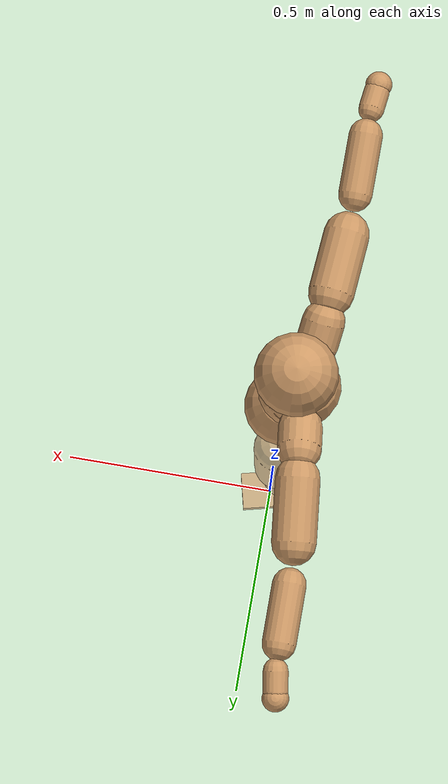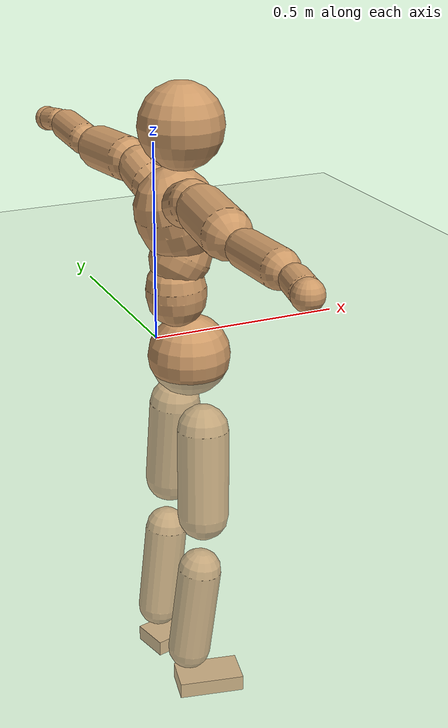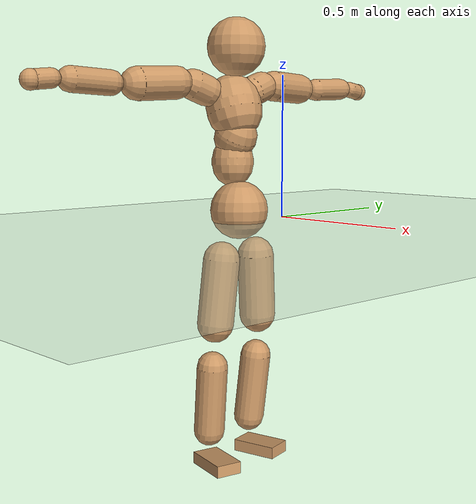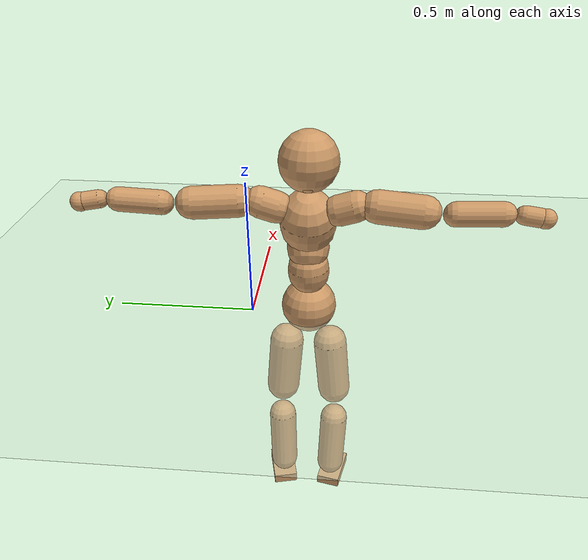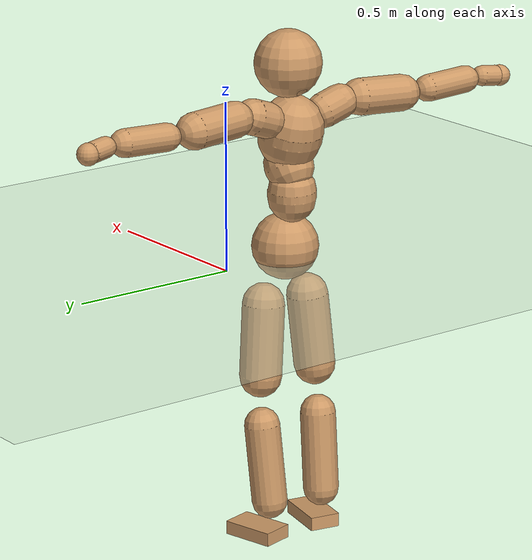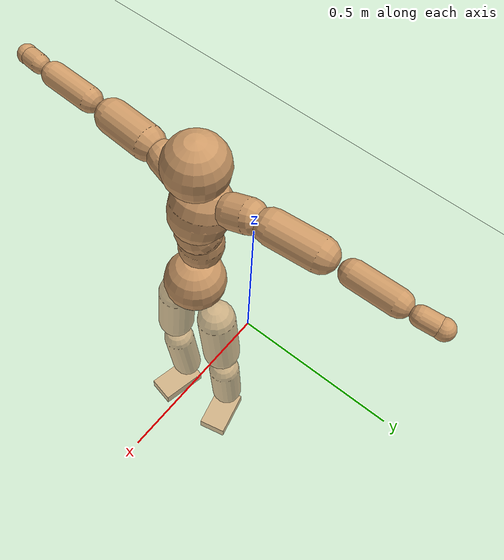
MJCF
<mujoco model="humanoid">
  <compiler coordinate="local"/>
  <default>
    <joint damping="0.0" armature="0.01" stiffness="0.0" limited="true"/>
    <geom conaffinity="1" condim="3" contype="7" margin="0.001" rgba="0.8 0.6 .4 1"/>
  </default>
  <asset>
    <texture type="skybox" builtin="gradient" rgb1=".4 .5 .6" rgb2="0 0 0" width="100" height="100"/>
    <texture builtin="flat" height="1278" mark="cross" markrgb="1 1 1" name="texgeom" random="0.01" rgb1="0.8 0.6 0.4" rgb2="0.8 0.6 0.4" type="cube" width="127"/>
    <texture builtin="checker" height="100" name="texplane" rgb1="0 0 0" rgb2="0.8 0.8 0.8" type="2d" width="100"/>
    <material name="MatPlane" reflectance="0.5" shininess="1" specular="1" texrepeat="60 60" texture="texplane"/>
    <material name="geom" texture="texgeom" texuniform="true"/>
  </asset>
  <worldbody>
    <light cutoff="100" diffuse="1 1 1" dir="-0 0 -1.3" directional="true" exponent="1" pos="0 0 1.3" specular=".1 .1 .1"/>
    <geom conaffinity="1" condim="3" name="floor" pos="0 0 0" rgba="0.8 0.9 0.8 1" size="100 100 .2" type="plane" material="MatPlane"/>
    <body name="Pelvis" pos="-0.0007 -0.2106 0.0389">
      <freejoint name="Pelvis"/>
      <geom type="sphere" contype="1" conaffinity="1" density="500" size="0.0993" pos="0.0000 0.0000 0.0000" name="Pelvis"/>
      <body name="L_Hip" pos="-0.0007 0.0768 -0.0901">
        <joint name="L_Hip_x" type="hinge" pos="0 0 0" axis="1 0 0" stiffness="800" damping="80" armature="0.02" range="-180.0000 180.0000"/>
        <joint name="L_Hip_y" type="hinge" pos="0 0 0" axis="0 1 0" stiffness="800" damping="80" armature="0.02" range="-180.0000 180.0000"/>
        <joint name="L_Hip_z" type="hinge" pos="0 0 0" axis="0 0 1" stiffness="800" damping="80" armature="0.02" range="-180.0000 180.0000"/>
        <geom type="capsule" contype="1" conaffinity="1" density="500" fromto="-0.0025 0.0057 -0.0725 -0.0098 0.0228 -0.2898" size="0.063" name="L_Hip"/>
        <body name="L_Knee" pos="-0.0123 0.0285 -0.3623">
          <joint name="L_Knee_x" type="hinge" pos="0 0 0" axis="1 0 0" stiffness="800" damping="80" armature="0.02" range="-180.0000 180.0000"/>
          <joint name="L_Knee_y" type="hinge" pos="0 0 0" axis="0 1 0" stiffness="800" damping="80" armature="0.02" range="-180.0000 180.0000"/>
          <joint name="L_Knee_z" type="hinge" pos="0 0 0" axis="0 0 1" stiffness="800" damping="80" armature="0.02" range="-180.0000 180.0000"/>
          <geom type="capsule" contype="1" conaffinity="1" density="500" fromto="-0.0090 -0.0022 -0.0773 -0.0361 -0.0087 -0.3092" size="0.0533" name="L_Knee"/>
          <body name="L_Ankle" pos="-0.0452 -0.0109 -0.3865">
            <joint name="L_Ankle_x" type="hinge" pos="0 0 0" axis="1 0 0" stiffness="800" damping="80" armature="0.02" range="-180.0000 180.0000"/>
            <joint name="L_Ankle_y" type="hinge" pos="0 0 0" axis="0 1 0" stiffness="800" damping="80" armature="0.02" range="-180.0000 180.0000"/>
            <joint name="L_Ankle_z" type="hinge" pos="0 0 0" axis="0 0 1" stiffness="800" damping="80" armature="0.02" range="-180.0000 180.0000"/>
            <geom type="box" contype="1" conaffinity="1" density="500" pos="0.0564 0.0135 -0.0280" size="0.0801 0.0475 0.0202" quat="0.9931 0.0000 0.0000 0.1172" name="L_Ankle"/>
            <body name="L_Toe" pos="0.1128 0.027 -0.056">
              <joint name="L_Toe_x" type="hinge" pos="0 0 0" axis="1 0 0" stiffness="500" damping="50" armature="0.02" range="-180.0000 180.0000"/>
              <joint name="L_Toe_y" type="hinge" pos="0 0 0" axis="0 1 0" stiffness="500" damping="50" armature="0.02" range="-180.0000 180.0000"/>
              <joint name="L_Toe_z" type="hinge" pos="0 0 0" axis="0 0 1" stiffness="500" damping="50" armature="0.02" range="-180.0000 180.0000"/>
              <geom type="box" contype="1" conaffinity="1" density="500" pos="0.0000 0.0000 0.0278" size="0.001 0.0024 0.001" quat="0.9924 0.0000 0.0000 0.1234" name="L_Toe"/>
            </body>
          </body>
        </body>
      </body>
      <body name="R_Hip" pos="0.0026 -0.0748 -0.0905">
        <joint name="R_Hip_x" type="hinge" pos="0 0 0" axis="1 0 0" stiffness="800" damping="80" armature="0.02" range="-180.0000 180.0000"/>
        <joint name="R_Hip_y" type="hinge" pos="0 0 0" axis="0 1 0" stiffness="800" damping="80" armature="0.02" range="-180.0000 180.0000"/>
        <joint name="R_Hip_z" type="hinge" pos="0 0 0" axis="0 0 1" stiffness="800" damping="80" armature="0.02" range="-180.0000 180.0000"/>
        <geom type="capsule" contype="1" conaffinity="1" density="500" fromto="-0.0027 -0.0071 -0.0737 -0.0108 -0.0285 -0.2949" size="0.0622" name="R_Hip"/>
        <body name="R_Knee" pos="-0.0135 -0.0356 -0.3687">
          <joint name="R_Knee_x" type="hinge" pos="0 0 0" axis="1 0 0" stiffness="800" damping="80" armature="0.02" range="-180.0000 180.0000"/>
          <joint name="R_Knee_y" type="hinge" pos="0 0 0" axis="0 1 0" stiffness="800" damping="80" armature="0.02" range="-180.0000 180.0000"/>
          <joint name="R_Knee_z" type="hinge" pos="0 0 0" axis="0 0 1" stiffness="800" damping="80" armature="0.02" range="-180.0000 180.0000"/>
          <geom type="capsule" contype="1" conaffinity="1" density="500" fromto="-0.0086 0.0026 -0.0777 -0.0346 0.0105 -0.3107" size="0.0535" name="R_Knee"/>
          <body name="R_Ankle" pos="-0.0432 0.0132 -0.3884">
            <joint name="R_Ankle_x" type="hinge" pos="0 0 0" axis="1 0 0" stiffness="800" damping="80" armature="0.02" range="-180.0000 180.0000"/>
            <joint name="R_Ankle_y" type="hinge" pos="0 0 0" axis="0 1 0" stiffness="800" damping="80" armature="0.02" range="-180.0000 180.0000"/>
            <joint name="R_Ankle_z" type="hinge" pos="0 0 0" axis="0 0 1" stiffness="800" damping="80" armature="0.02" range="-180.0000 180.0000"/>
            <geom type="box" contype="1" conaffinity="1" density="500" pos="0.0584 -0.0120 -0.0242" size="0.0819 0.0461 0.0204" quat="0.9949 0.0000 0.0000 -0.1010" name="R_Ankle"/>
            <body name="R_Toe" pos="0.1168 -0.024 -0.0483">
              <joint name="R_Toe_x" type="hinge" pos="0 0 0" axis="1 0 0" stiffness="500" damping="50" armature="0.02" range="-180.0000 180.0000"/>
              <joint name="R_Toe_y" type="hinge" pos="0 0 0" axis="0 1 0" stiffness="500" damping="50" armature="0.02" range="-180.0000 180.0000"/>
              <joint name="R_Toe_z" type="hinge" pos="0 0 0" axis="0 0 1" stiffness="500" damping="50" armature="0.02" range="-180.0000 180.0000"/>
              <geom type="box" contype="1" conaffinity="1" density="500" pos="0.0000 0.0000 0.0256" size="0.0009 0.0023 0.0011" quat="0.9958 0.0000 0.0000 -0.0912" name="R_Toe"/>
            </body>
          </body>
        </body>
      </body>
      <body name="Torso" pos="-0.0302 -0.002 0.1046">
        <joint name="Torso_x" type="hinge" pos="0 0 0" axis="1 0 0" stiffness="1000" damping="100" armature="0.02" range="-180.0000 180.0000"/>
        <joint name="Torso_y" type="hinge" pos="0 0 0" axis="0 1 0" stiffness="1000" damping="100" armature="0.02" range="-180.0000 180.0000"/>
        <joint name="Torso_z" type="hinge" pos="0 0 0" axis="0 0 1" stiffness="1000" damping="100" armature="0.02" range="-180.0000 180.0000"/>
        <geom type="capsule" contype="1" conaffinity="1" density="500" fromto="-0.0025 0.0019 0.0711 -0.0016 0.0012 0.0474" size="0.071424" name="Torso"/>
        <body name="Spine" pos="-0.0041 0.0031 0.1185">
          <joint name="Spine_x" type="hinge" pos="0 0 0" axis="1 0 0" stiffness="1000" damping="100" armature="0.02" range="-180.0000 180.0000"/>
          <joint name="Spine_y" type="hinge" pos="0 0 0" axis="0 1 0" stiffness="1000" damping="100" armature="0.02" range="-180.0000 180.0000"/>
          <joint name="Spine_z" type="hinge" pos="0 0 0" axis="0 0 1" stiffness="1000" damping="100" armature="0.02" range="-180.0000 180.0000"/>
          <geom type="capsule" contype="1" conaffinity="1" density="500" fromto="0.0172 0.0010 0.0291 0.0115 0.0007 0.0194" size="0.072447" name="Spine"/>
          <body name="Chest" pos="0.0287 0.0017 0.0485">
            <joint name="Chest_x" type="hinge" pos="0 0 0" axis="1 0 0" stiffness="1000" damping="100" armature="0.02" range="-180.0000 180.0000"/>
            <joint name="Chest_y" type="hinge" pos="0 0 0" axis="0 1 0" stiffness="1000" damping="100" armature="0.02" range="-180.0000 180.0000"/>
            <joint name="Chest_z" type="hinge" pos="0 0 0" axis="0 0 1" stiffness="1000" damping="100" armature="0.02" range="-180.0000 180.0000"/>
            <geom type="capsule" contype="1" conaffinity="1" density="500" fromto="-0.0283 -0.0009 0.0924 -0.0189 -0.0006 0.0616" size="0.09486" name="Chest"/>
            <body name="Neck" pos="-0.0583 -0.0026 0.2163">
              <joint name="Neck_x" type="hinge" pos="0 0 0" axis="1 0 0" stiffness="500" damping="50" armature="0.02" range="-180.0000 180.0000"/>
              <joint name="Neck_y" type="hinge" pos="0 0 0" axis="0 1 0" stiffness="500" damping="50" armature="0.02" range="-180.0000 180.0000"/>
              <joint name="Neck_z" type="hinge" pos="0 0 0" axis="0 0 1" stiffness="500" damping="50" armature="0.02" range="-180.0000 180.0000"/>
              <geom type="capsule" contype="1" conaffinity="1" density="500" fromto="0.0094 0.0003 0.0120 0.0377 0.0013 0.0480" size="0.039525" name="Neck"/>
              <body name="Head" pos="0.0471 0.0016 0.06">
                <joint name="Head_x" type="hinge" pos="0 0 0" axis="1 0 0" stiffness="500" damping="50" armature="0.02" range="-180.0000 180.0000"/>
                <joint name="Head_y" type="hinge" pos="0 0 0" axis="0 1 0" stiffness="500" damping="50" armature="0.02" range="-180.0000 180.0000"/>
                <joint name="Head_z" type="hinge" pos="0 0 0" axis="0 0 1" stiffness="500" damping="50" armature="0.02" range="-180.0000 180.0000"/>
                <geom type="sphere" contype="1" conaffinity="1" density="500" size="0.0991" pos="0.0000 0.0000 0.0000" name="Head"/>
              </body>
            </body>
            <body name="L_Thorax" pos="-0.0394 0.0814 0.1236">
              <joint name="L_Thorax_x" type="hinge" pos="0 0 0" axis="1 0 0" stiffness="500" damping="50" armature="0.02" range="-180.0000 180.0000"/>
              <joint name="L_Thorax_y" type="hinge" pos="0 0 0" axis="0 1 0" stiffness="500" damping="50" armature="0.02" range="-180.0000 180.0000"/>
              <joint name="L_Thorax_z" type="hinge" pos="0 0 0" axis="0 0 1" stiffness="500" damping="50" armature="0.02" range="-180.0000 180.0000"/>
              <geom type="capsule" contype="1" conaffinity="1" density="500" fromto="-0.0020 0.0180 0.0064 -0.0080 0.0720 0.0256" size="0.0528" name="L_Thorax"/>
              <body name="L_Shoulder" pos="-0.01 0.0901 0.032">
                <joint name="L_Shoulder_x" type="hinge" pos="0 0 0" axis="1 0 0" stiffness="500" damping="50" armature="0.02" range="-720.0000 720.0000"/>
                <joint name="L_Shoulder_y" type="hinge" pos="0 0 0" axis="0 1 0" stiffness="500" damping="50" armature="0.02" range="-720.0000 720.0000"/>
                <joint name="L_Shoulder_z" type="hinge" pos="0 0 0" axis="0 0 1" stiffness="500" damping="50" armature="0.02" range="-720.0000 720.0000"/>
                <geom type="capsule" contype="1" conaffinity="1" density="500" fromto="-0.0055 0.0504 -0.0019 -0.0218 0.2015 -0.0075" size="0.0535" name="L_Shoulder"/>
                <body name="L_Elbow" pos="-0.0273 0.2518 -0.0094">
                  <joint name="L_Elbow_x" type="hinge" pos="0 0 0" axis="1 0 0" stiffness="500" damping="50" armature="0.02" range="-720.0000 720.0000"/>
                  <joint name="L_Elbow_y" type="hinge" pos="0 0 0" axis="0 1 0" stiffness="500" damping="50" armature="0.02" range="-720.0000 720.0000"/>
                  <joint name="L_Elbow_z" type="hinge" pos="0 0 0" axis="0 0 1" stiffness="500" damping="50" armature="0.02" range="-720.0000 720.0000"/>
                  <geom type="capsule" contype="1" conaffinity="1" density="500" fromto="0.0001 0.0471 0.0018 0.0006 0.1885 0.0073" size="0.0402" name="L_Elbow"/>
                  <body name="L_Wrist" pos="0.0007 0.2356 0.0091">
                    <joint name="L_Wrist_x" type="hinge" pos="0 0 0" axis="1 0 0" stiffness="300" damping="30" armature="0.02" range="-180.0000 180.0000"/>
                    <joint name="L_Wrist_y" type="hinge" pos="0 0 0" axis="0 1 0" stiffness="300" damping="30" armature="0.02" range="-180.0000 180.0000"/>
                    <joint name="L_Wrist_z" type="hinge" pos="0 0 0" axis="0 0 1" stiffness="300" damping="30" armature="0.02" range="-180.0000 180.0000"/>
                    <geom type="capsule" contype="1" conaffinity="1" density="500" fromto="-0.0026 0.0158 -0.0019 -0.0103 0.0632 -0.0076" size="0.0301" name="L_Wrist"/>
                    <body name="L_Hand" pos="-0.0129 0.079 -0.0095">
                      <joint name="L_Hand_x" type="hinge" pos="0 0 0" axis="1 0 0" stiffness="300" damping="30" armature="0.02" range="-180.0000 180.0000"/>
                      <joint name="L_Hand_y" type="hinge" pos="0 0 0" axis="0 1 0" stiffness="300" damping="30" armature="0.02" range="-180.0000 180.0000"/>
                      <joint name="L_Hand_z" type="hinge" pos="0 0 0" axis="0 0 1" stiffness="300" damping="30" armature="0.02" range="-180.0000 180.0000"/>
                      <geom type="sphere" contype="1" conaffinity="1" density="500" size="0.0319" pos="0.0000 0.0000 0.0000" name="L_Hand"/>
                    </body>
                  </body>
                </body>
              </body>
            </body>
            <body name="R_Thorax" pos="-0.044 -0.0832 0.1218">
              <joint name="R_Thorax_x" type="hinge" pos="0 0 0" axis="1 0 0" stiffness="500" damping="50" armature="0.02" range="-180.0000 180.0000"/>
              <joint name="R_Thorax_y" type="hinge" pos="0 0 0" axis="0 1 0" stiffness="500" damping="50" armature="0.02" range="-180.0000 180.0000"/>
              <joint name="R_Thorax_z" type="hinge" pos="0 0 0" axis="0 0 1" stiffness="500" damping="50" armature="0.02" range="-180.0000 180.0000"/>
              <geom type="capsule" contype="1" conaffinity="1" density="500" fromto="-0.0024 -0.0184 0.0067 -0.0095 -0.0736 0.0269" size="0.0515" name="R_Thorax"/>
              <body name="R_Shoulder" pos="-0.0118 -0.0921 0.0337">
                <joint name="R_Shoulder_x" type="hinge" pos="0 0 0" axis="1 0 0" stiffness="500" damping="50" armature="0.02" range="-720.0000 720.0000"/>
                <joint name="R_Shoulder_y" type="hinge" pos="0 0 0" axis="0 1 0" stiffness="500" damping="50" armature="0.02" range="-720.0000 720.0000"/>
                <joint name="R_Shoulder_z" type="hinge" pos="0 0 0" axis="0 0 1" stiffness="500" damping="50" armature="0.02" range="-720.0000 720.0000"/>
                <geom type="capsule" contype="1" conaffinity="1" density="500" fromto="-0.0042 -0.0491 -0.0025 -0.0170 -0.1963 -0.0098" size="0.0547" name="R_Shoulder"/>
                <body name="R_Elbow" pos="-0.0212 -0.2454 -0.0123">
                  <joint name="R_Elbow_x" type="hinge" pos="0 0 0" axis="1 0 0" stiffness="500" damping="50" armature="0.02" range="-720.0000 720.0000"/>
                  <joint name="R_Elbow_y" type="hinge" pos="0 0 0" axis="0 1 0" stiffness="500" damping="50" armature="0.02" range="-720.0000 720.0000"/>
                  <joint name="R_Elbow_z" type="hinge" pos="0 0 0" axis="0 0 1" stiffness="500" damping="50" armature="0.02" range="-720.0000 720.0000"/>
                  <geom type="capsule" contype="1" conaffinity="1" density="500" fromto="-0.0004 -0.0483 0.0021 -0.0016 -0.1933 0.0086" size="0.0403" name="R_Elbow"/>
                  <body name="R_Wrist" pos="-0.002 -0.2417 0.0107">
                    <joint name="R_Wrist_x" type="hinge" pos="0 0 0" axis="1 0 0" stiffness="300" damping="30" armature="0.02" range="-180.0000 180.0000"/>
                    <joint name="R_Wrist_y" type="hinge" pos="0 0 0" axis="0 1 0" stiffness="300" damping="30" armature="0.02" range="-180.0000 180.0000"/>
                    <joint name="R_Wrist_z" type="hinge" pos="0 0 0" axis="0 0 1" stiffness="300" damping="30" armature="0.02" range="-180.0000 180.0000"/>
                    <geom type="capsule" contype="1" conaffinity="1" density="500" fromto="-0.0021 -0.0158 -0.0014 -0.0082 -0.0634 -0.0057" size="0.0307" name="R_Wrist"/>
                    <body name="R_Hand" pos="-0.0103 -0.0792 -0.0072">
                      <joint name="R_Hand_x" type="hinge" pos="0 0 0" axis="1 0 0" stiffness="300" damping="30" armature="0.02" range="-180.0000 180.0000"/>
                      <joint name="R_Hand_y" type="hinge" pos="0 0 0" axis="0 1 0" stiffness="300" damping="30" armature="0.02" range="-180.0000 180.0000"/>
                      <joint name="R_Hand_z" type="hinge" pos="0 0 0" axis="0 0 1" stiffness="300" damping="30" armature="0.02" range="-180.0000 180.0000"/>
                      <geom type="sphere" contype="1" conaffinity="1" density="500" size="0.0319" pos="0.0000 0.0000 0.0000" name="R_Hand"/>
                    </body>
                  </body>
                </body>
              </body>
            </body>
          </body>
        </body>
      </body>
    </body>
  </worldbody>
  <actuator>
    <motor name="L_Hip_x" joint="L_Hip_x" gear="500"/>
    <motor name="L_Hip_y" joint="L_Hip_y" gear="500"/>
    <motor name="L_Hip_z" joint="L_Hip_z" gear="500"/>
    <motor name="L_Knee_x" joint="L_Knee_x" gear="500"/>
    <motor name="L_Knee_y" joint="L_Knee_y" gear="500"/>
    <motor name="L_Knee_z" joint="L_Knee_z" gear="500"/>
    <motor name="L_Ankle_x" joint="L_Ankle_x" gear="500"/>
    <motor name="L_Ankle_y" joint="L_Ankle_y" gear="500"/>
    <motor name="L_Ankle_z" joint="L_Ankle_z" gear="500"/>
    <motor name="L_Toe_x" joint="L_Toe_x" gear="500"/>
    <motor name="L_Toe_y" joint="L_Toe_y" gear="500"/>
    <motor name="L_Toe_z" joint="L_Toe_z" gear="500"/>
    <motor name="R_Hip_x" joint="R_Hip_x" gear="500"/>
    <motor name="R_Hip_y" joint="R_Hip_y" gear="500"/>
    <motor name="R_Hip_z" joint="R_Hip_z" gear="500"/>
    <motor name="R_Knee_x" joint="R_Knee_x" gear="500"/>
    <motor name="R_Knee_y" joint="R_Knee_y" gear="500"/>
    <motor name="R_Knee_z" joint="R_Knee_z" gear="500"/>
    <motor name="R_Ankle_x" joint="R_Ankle_x" gear="500"/>
    <motor name="R_Ankle_y" joint="R_Ankle_y" gear="500"/>
    <motor name="R_Ankle_z" joint="R_Ankle_z" gear="500"/>
    <motor name="R_Toe_x" joint="R_Toe_x" gear="500"/>
    <motor name="R_Toe_y" joint="R_Toe_y" gear="500"/>
    <motor name="R_Toe_z" joint="R_Toe_z" gear="500"/>
    <motor name="Torso_x" joint="Torso_x" gear="500"/>
    <motor name="Torso_y" joint="Torso_y" gear="500"/>
    <motor name="Torso_z" joint="Torso_z" gear="500"/>
    <motor name="Spine_x" joint="Spine_x" gear="500"/>
    <motor name="Spine_y" joint="Spine_y" gear="500"/>
    <motor name="Spine_z" joint="Spine_z" gear="500"/>
    <motor name="Chest_x" joint="Chest_x" gear="500"/>
    <motor name="Chest_y" joint="Chest_y" gear="500"/>
    <motor name="Chest_z" joint="Chest_z" gear="500"/>
    <motor name="Neck_x" joint="Neck_x" gear="500"/>
    <motor name="Neck_y" joint="Neck_y" gear="500"/>
    <motor name="Neck_z" joint="Neck_z" gear="500"/>
    <motor name="Head_x" joint="Head_x" gear="500"/>
    <motor name="Head_y" joint="Head_y" gear="500"/>
    <motor name="Head_z" joint="Head_z" gear="500"/>
    <motor name="L_Thorax_x" joint="L_Thorax_x" gear="500"/>
    <motor name="L_Thorax_y" joint="L_Thorax_y" gear="500"/>
    <motor name="L_Thorax_z" joint="L_Thorax_z" gear="500"/>
    <motor name="L_Shoulder_x" joint="L_Shoulder_x" gear="500"/>
    <motor name="L_Shoulder_y" joint="L_Shoulder_y" gear="500"/>
    <motor name="L_Shoulder_z" joint="L_Shoulder_z" gear="500"/>
    <motor name="L_Elbow_x" joint="L_Elbow_x" gear="500"/>
    <motor name="L_Elbow_y" joint="L_Elbow_y" gear="500"/>
    <motor name="L_Elbow_z" joint="L_Elbow_z" gear="500"/>
    <motor name="L_Wrist_x" joint="L_Wrist_x" gear="500"/>
    <motor name="L_Wrist_y" joint="L_Wrist_y" gear="500"/>
    <motor name="L_Wrist_z" joint="L_Wrist_z" gear="500"/>
    <motor name="L_Hand_x" joint="L_Hand_x" gear="500"/>
    <motor name="L_Hand_y" joint="L_Hand_y" gear="500"/>
    <motor name="L_Hand_z" joint="L_Hand_z" gear="500"/>
    <motor name="R_Thorax_x" joint="R_Thorax_x" gear="500"/>
    <motor name="R_Thorax_y" joint="R_Thorax_y" gear="500"/>
    <motor name="R_Thorax_z" joint="R_Thorax_z" gear="500"/>
    <motor name="R_Shoulder_x" joint="R_Shoulder_x" gear="500"/>
    <motor name="R_Shoulder_y" joint="R_Shoulder_y" gear="500"/>
    <motor name="R_Shoulder_z" joint="R_Shoulder_z" gear="500"/>
    <motor name="R_Elbow_x" joint="R_Elbow_x" gear="500"/>
    <motor name="R_Elbow_y" joint="R_Elbow_y" gear="500"/>
    <motor name="R_Elbow_z" joint="R_Elbow_z" gear="500"/>
    <motor name="R_Wrist_x" joint="R_Wrist_x" gear="500"/>
    <motor name="R_Wrist_y" joint="R_Wrist_y" gear="500"/>
    <motor name="R_Wrist_z" joint="R_Wrist_z" gear="500"/>
    <motor name="R_Hand_x" joint="R_Hand_x" gear="500"/>
    <motor name="R_Hand_y" joint="R_Hand_y" gear="500"/>
    <motor name="R_Hand_z" joint="R_Hand_z" gear="500"/>
  </actuator>
  <contact>
    <exclude body1="Torso" body2="Chest"/>
    <exclude body1="Head" body2="Chest"/>
    <exclude body1="R_Knee" body2="R_Toe"/>
    <exclude body1="R_Knee" body2="L_Ankle"/>
    <exclude body1="R_Knee" body2="L_Toe"/>
    <exclude body1="L_Knee" body2="L_Toe"/>
    <exclude body1="L_Knee" body2="R_Ankle"/>
    <exclude body1="L_Knee" body2="R_Toe"/>
    <exclude body1="L_Shoulder" body2="Chest"/>
    <exclude body1="R_Shoulder" body2="Chest"/>
  </contact>
  <sensor/>
  <size njmax="700" nconmax="700"/>
</mujoco>
